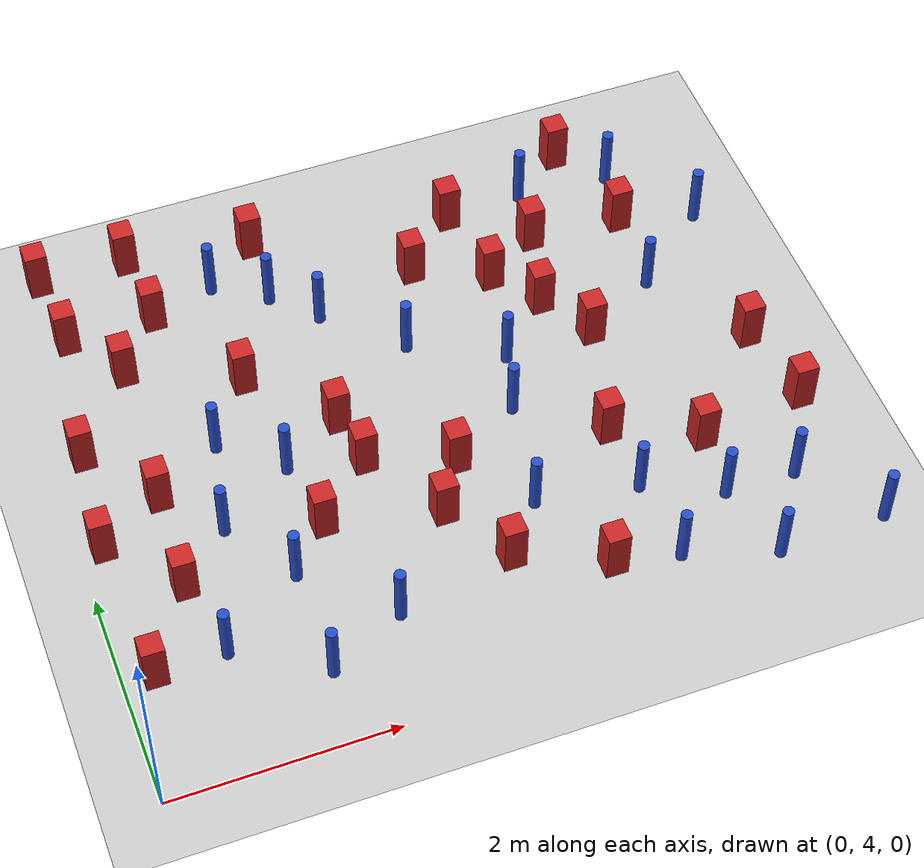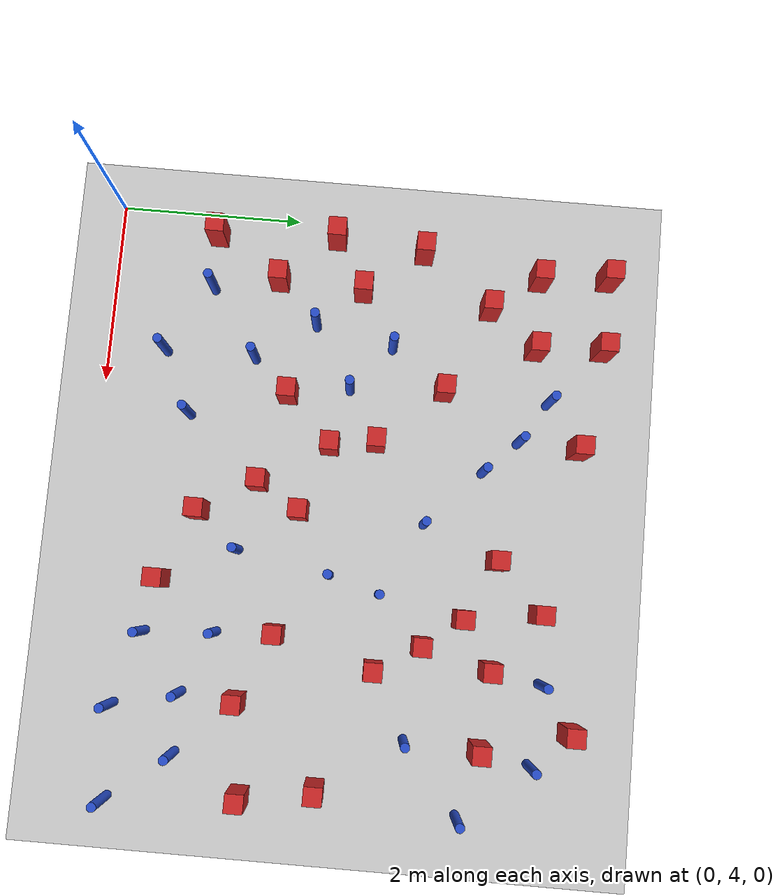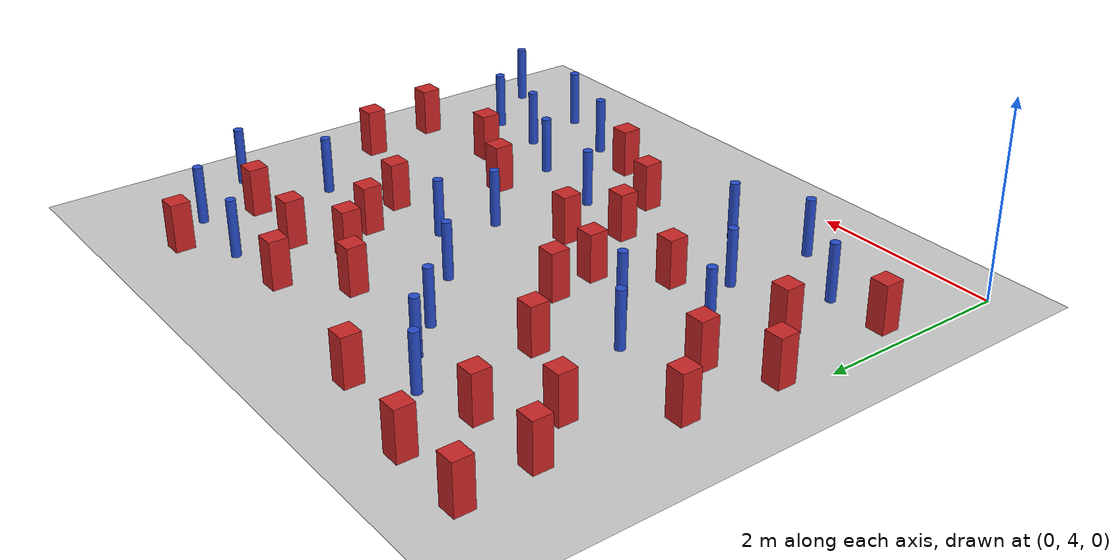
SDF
<sdf version="1.6">
 <world name="default">
  <model name="ground_plane">
   <static>1</static>
   <link name="link">
    <collision name="collision">
     <geometry><plane><normal>0 0 1</normal><size>100 100</size></plane></geometry>
     <surface><friction><ode><mu>100</mu><mu2>50</mu2></ode></friction></surface>
    </collision>
    <visual name="visual">
     <cast_shadows>0</cast_shadows>
     <geometry><plane><normal>0 0 1</normal><size>100 100</size></plane></geometry>
     <material>
      <ambient>1.0 1.0 1.0 1.0</ambient>
      <diffuse>0.8 0.8 0.8 1.0</diffuse>
      <specular>0.01 0.01 0.01 1.000000</specular>
     </material>
    </visual>
   </link>
  </model>
  <model name="pole_obstacle2">
   <static>true</static>
   <pose>1.63536920338 5.65598583855 -9.47619616065e-06 5.49618799737e-07 2.36310414061e-07 -1.550905348e-07</pose>
   <link name="link">
    <pose>0 0 0.3 0 -0 0</pose>
    <inertial>
     <mass>1</mass>
     <inertia><ixx>0.145833</ixx><ixy>0</ixy><ixz>0</ixz><iyy>0.145833</iyy><iyz>0</iyz><izz>0.125</izz></inertia>
    </inertial>
    <collision name="collision">
     <geometry><cylinder><radius>0.05</radius><length>.6</length></cylinder></geometry>
    </collision>
    <visual name="visual">
     <geometry><cylinder><radius>0.05</radius><length>.6</length></cylinder></geometry>
     <material>
      <script><name>Gazebo/Blue</name><uri>file://media/materials/scripts/gazebo.material</uri></script>
     </material>
    </visual>
   </link>
  </model>
  <model name="square_post_obstacle2">
   <static>true</static>
   <pose>1.28413385972 8.73851189312 -6.11067671241e-07 -5.50515727128e-06 -8.79689657224e-07 2.37013304536e-05</pose>
   <link name="link">
    <pose>0 0 0.25 0 -0 0</pose>
    <inertial>
     <mass>100</mass>
     <inertia>
      <ixx>0.166667</ixx>
      <ixy>0</ixy>
      <ixz>0</ixz>
      <iyy>0.166667</iyy>
      <iyz>0</iyz>
      <izz>0.166667</izz>
     </inertia>
    </inertial>
    <collision name="collision"><geometry><box><size>.2 .2 .5</size></box></geometry></collision>
    <visual name="visual">
     <geometry><box><size>.2 .2 .5</size></box></geometry>
     <material>
      <script><name>Gazebo/Red</name><uri>file://media/materials/scripts/gazebo.material</uri></script>
     </material>
    </visual>
   </link>
  </model>
  <model name="square_post_obstacle7">
   <static>true</static>
   <pose>3.37304363097 5.20476493427 -6.11067671241e-07 -5.50515727128e-06 -8.79689657224e-07 2.37013304536e-05</pose>
   <link name="link">
    <pose>0 0 0.25 0 -0 0</pose>
    <inertial>
     <mass>100</mass>
     <inertia>
      <ixx>0.166667</ixx>
      <ixy>0</ixy>
      <ixz>0</ixz>
      <iyy>0.166667</iyy>
      <iyz>0</iyz>
      <izz>0.166667</izz>
     </inertia>
    </inertial>
    <collision name="collision"><geometry><box><size>.2 .2 .5</size></box></geometry></collision>
    <visual name="visual">
     <geometry><box><size>.2 .2 .5</size></box></geometry>
     <material>
      <script><name>Gazebo/Red</name><uri>file://media/materials/scripts/gazebo.material</uri></script>
     </material>
    </visual>
   </link>
  </model>
  <model name="square_post_obstacle13">
   <static>true</static>
   <pose>4.82718077403 8.4764981061 -6.11067671241e-07 -5.50515727128e-06 -8.79689657224e-07 2.37013304536e-05</pose>
   <link name="link">
    <pose>0 0 0.25 0 -0 0</pose>
    <inertial>
     <mass>100</mass>
     <inertia>
      <ixx>0.166667</ixx>
      <ixy>0</ixy>
      <ixz>0</ixz>
      <iyy>0.166667</iyy>
      <iyz>0</iyz>
      <izz>0.166667</izz>
     </inertia>
    </inertial>
    <collision name="collision"><geometry><box><size>.2 .2 .5</size></box></geometry></collision>
    <visual name="visual">
     <geometry><box><size>.2 .2 .5</size></box></geometry>
     <material>
      <script><name>Gazebo/Red</name><uri>file://media/materials/scripts/gazebo.material</uri></script>
     </material>
    </visual>
   </link>
  </model>
  <model name="square_post_obstacle16">
   <static>true</static>
   <pose>4.92409012035 7.23680546538 -6.11067671241e-07 -5.50515727128e-06 -8.79689657224e-07 2.37013304536e-05</pose>
   <link name="link">
    <pose>0 0 0.25 0 -0 0</pose>
    <inertial>
     <mass>100</mass>
     <inertia>
      <ixx>0.166667</ixx>
      <ixy>0</ixy>
      <ixz>0</ixz>
      <iyy>0.166667</iyy>
      <iyz>0</iyz>
      <izz>0.166667</izz>
     </inertia>
    </inertial>
    <collision name="collision"><geometry><box><size>.2 .2 .5</size></box></geometry></collision>
    <visual name="visual">
     <geometry><box><size>.2 .2 .5</size></box></geometry>
     <material>
      <script><name>Gazebo/Red</name><uri>file://media/materials/scripts/gazebo.material</uri></script>
     </material>
    </visual>
   </link>
  </model>
  <model name="pole_obstacle22">
   <static>true</static>
   <pose>4.66761421427 5.51597058757 -9.47619616065e-06 5.49618799737e-07 2.36310414037e-07 -1.55090534814e-07</pose>
   <link name="link">
    <pose>0 0 0.3 0 -0 0</pose>
    <inertial>
     <mass>1</mass>
     <inertia><ixx>0.145833</ixx><ixy>0</ixy><ixz>0</ixz><iyy>0.145833</iyy><iyz>0</iyz><izz>0.125</izz></inertia>
    </inertial>
    <collision name="collision">
     <geometry><cylinder><radius>0.05</radius><length>.6</length></cylinder></geometry>
    </collision>
    <visual name="visual">
     <geometry><cylinder><radius>0.05</radius><length>.6</length></cylinder></geometry>
     <material>
      <script><name>Gazebo/Blue</name><uri>file://media/materials/scripts/gazebo.material</uri></script>
     </material>
    </visual>
   </link>
  </model>
  <model name="pole_obstacle25">
   <static>true</static>
   <pose>2.34287473306 8.62374181351 -9.4761961606e-06 5.49618799729e-07 2.36310414e-07 -1.55090534824e-07</pose>
   <link name="link">
    <pose>0 0 0.3 0 -0 0</pose>
    <inertial>
     <mass>1</mass>
     <inertia><ixx>0.145833</ixx><ixy>0</ixy><ixz>0</ixz><iyy>0.145833</iyy><iyz>0</iyz><izz>0.125</izz></inertia>
    </inertial>
    <collision name="collision">
     <geometry><cylinder><radius>0.05</radius><length>.6</length></cylinder></geometry>
    </collision>
    <visual name="visual">
     <geometry><cylinder><radius>0.05</radius><length>.6</length></cylinder></geometry>
     <material>
      <script><name>Gazebo/Blue</name><uri>file://media/materials/scripts/gazebo.material</uri></script>
     </material>
    </visual>
   </link>
  </model>
  <model name="square_post_obstacle22">
   <static>true</static>
   <pose>3.65647134105 8.4749441966 -6.11067671241e-07 -5.50515727128e-06 -8.79689657224e-07 2.37013304536e-05</pose>
   <link name="link">
    <pose>0 0 0.25 0 -0 0</pose>
    <inertial>
     <mass>100</mass>
     <inertia>
      <ixx>0.166667</ixx>
      <ixy>0</ixy>
      <ixz>0</ixz>
      <iyy>0.166667</iyy>
      <iyz>0</iyz>
      <izz>0.166667</izz>
     </inertia>
    </inertial>
    <collision name="collision"><geometry><box><size>.2 .2 .5</size></box></geometry></collision>
    <visual name="visual">
     <geometry><box><size>.2 .2 .5</size></box></geometry>
     <material>
      <script><name>Gazebo/Red</name><uri>file://media/materials/scripts/gazebo.material</uri></script>
     </material>
    </visual>
   </link>
  </model>
  <model name="pole_obstacle31">
   <static>true</static>
   <pose>2.70337888853 8.25574455518 -9.4761961606e-06 5.49618799729e-07 2.36310414e-07 -1.55090534824e-07</pose>
   <link name="link">
    <pose>0 0 0.3 0 -0 0</pose>
    <inertial>
     <mass>1</mass>
     <inertia><ixx>0.145833</ixx><ixy>0</ixy><ixz>0</ixz><iyy>0.145833</iyy><iyz>0</iyz><izz>0.125</izz></inertia>
    </inertial>
    <collision name="collision">
     <geometry><cylinder><radius>0.05</radius><length>.6</length></cylinder></geometry>
    </collision>
    <visual name="visual">
     <geometry><cylinder><radius>0.05</radius><length>.6</length></cylinder></geometry>
     <material>
      <script><name>Gazebo/Blue</name><uri>file://media/materials/scripts/gazebo.material</uri></script>
     </material>
    </visual>
   </link>
  </model>
  <model name="square_post_obstacle27">
   <static>true</static>
   <pose>0.731215519983 5.85237834942 -6.11067671241e-07 -5.50515727128e-06 -8.79689657224e-07 2.37013304536e-05</pose>
   <link name="link">
    <pose>0 0 0.25 0 -0 0</pose>
    <inertial>
     <mass>100</mass>
     <inertia>
      <ixx>0.166667</ixx>
      <ixy>0</ixy>
      <ixz>0</ixz>
      <iyy>0.166667</iyy>
      <iyz>0</iyz>
      <izz>0.166667</izz>
     </inertia>
    </inertial>
    <collision name="collision"><geometry><box><size>.2 .2 .5</size></box></geometry></collision>
    <visual name="visual">
     <geometry><box><size>.2 .2 .5</size></box></geometry>
     <material>
      <script><name>Gazebo/Red</name><uri>file://media/materials/scripts/gazebo.material</uri></script>
     </material>
    </visual>
   </link>
  </model>
  <model name="pole_obstacle39">
   <static>true</static>
   <pose>3.95678954155 6.68247510671 -9.47619616065e-06 5.49618799737e-07 2.36310414049e-07 -1.55090534808e-07</pose>
   <link name="link">
    <pose>0 0 0.3 0 -0 0</pose>
    <inertial>
     <mass>1</mass>
     <inertia><ixx>0.145833</ixx><ixy>0</ixy><ixz>0</ixz><iyy>0.145833</iyy><iyz>0</iyz><izz>0.125</izz></inertia>
    </inertial>
    <collision name="collision">
     <geometry><cylinder><radius>0.05</radius><length>.6</length></cylinder></geometry>
    </collision>
    <visual name="visual">
     <geometry><cylinder><radius>0.05</radius><length>.6</length></cylinder></geometry>
     <material>
      <script><name>Gazebo/Blue</name><uri>file://media/materials/scripts/gazebo.material</uri></script>
     </material>
    </visual>
   </link>
  </model>
  <model name="square_post_obstacle33">
   <static>true</static>
   <pose>0.196611121142 6.45128601565 -6.11067671241e-07 -5.50515727128e-06 -8.79689657224e-07 2.37013304536e-05</pose>
   <link name="link">
    <pose>0 0 0.25 0 -0 0</pose>
    <inertial>
     <mass>100</mass>
     <inertia>
      <ixx>0.166667</ixx>
      <ixy>0</ixy>
      <ixz>0</ixz>
      <iyy>0.166667</iyy>
      <iyz>0</iyz>
      <izz>0.166667</izz>
     </inertia>
    </inertial>
    <collision name="collision"><geometry><box><size>.2 .2 .5</size></box></geometry></collision>
    <visual name="visual">
     <geometry><box><size>.2 .2 .5</size></box></geometry>
     <material>
      <script><name>Gazebo/Red</name><uri>file://media/materials/scripts/gazebo.material</uri></script>
     </material>
    </visual>
   </link>
  </model>
  <model name="pole_obstacle46">
   <static>true</static>
   <pose>1.88121961669 8.91884563724 -9.47619616065e-06 5.49618799737e-07 2.36310414046e-07 -1.55090534809e-07</pose>
   <link name="link">
    <pose>0 0 0.3 0 -0 0</pose>
    <inertial>
     <mass>1</mass>
     <inertia><ixx>0.145833</ixx><ixy>0</ixy><ixz>0</ixz><iyy>0.145833</iyy><iyz>0</iyz><izz>0.125</izz></inertia>
    </inertial>
    <collision name="collision">
     <geometry><cylinder><radius>0.05</radius><length>.6</length></cylinder></geometry>
    </collision>
    <visual name="visual">
     <geometry><cylinder><radius>0.05</radius><length>.6</length></cylinder></geometry>
     <material>
      <script><name>Gazebo/Blue</name><uri>file://media/materials/scripts/gazebo.material</uri></script>
     </material>
    </visual>
   </link>
  </model>
  <model name="square_post_obstacle38">
   <static>true</static>
   <pose>4.30647447967 8.15275104865 -6.11067671241e-07 -5.50515727128e-06 -8.79689657224e-07 2.37013304536e-05</pose>
   <link name="link">
    <pose>0 0 0.25 0 -0 0</pose>
    <inertial>
     <mass>100</mass>
     <inertia>
      <ixx>0.166667</ixx>
      <ixy>0</ixy>
      <ixz>0</ixz>
      <iyy>0.166667</iyy>
      <iyz>0</iyz>
      <izz>0.166667</izz>
     </inertia>
    </inertial>
    <collision name="collision"><geometry><box><size>.2 .2 .5</size></box></geometry></collision>
    <visual name="visual">
     <geometry><box><size>.2 .2 .5</size></box></geometry>
     <material>
      <script><name>Gazebo/Red</name><uri>file://media/materials/scripts/gazebo.material</uri></script>
     </material>
    </visual>
   </link>
  </model>
  <model name="pole_obstacle54">
   <static>true</static>
   <pose>4.92861528887 9.03308028596 -9.47619616065e-06 5.49618799737e-07 2.36310414065e-07 -1.55090534796e-07</pose>
   <link name="link">
    <pose>0 0 0.3 0 -0 0</pose>
    <inertial>
     <mass>1</mass>
     <inertia><ixx>0.145833</ixx><ixy>0</ixy><ixz>0</ixz><iyy>0.145833</iyy><iyz>0</iyz><izz>0.125</izz></inertia>
    </inertial>
    <collision name="collision">
     <geometry><cylinder><radius>0.05</radius><length>.6</length></cylinder></geometry>
    </collision>
    <visual name="visual">
     <geometry><cylinder><radius>0.05</radius><length>.6</length></cylinder></geometry>
     <material>
      <script><name>Gazebo/Blue</name><uri>file://media/materials/scripts/gazebo.material</uri></script>
     </material>
    </visual>
   </link>
  </model>
  <model name="square_post_obstacle41">
   <static>true</static>
   <pose>6.22185440824 6.727240669 -6.11067671241e-07 -5.50515727128e-06 -8.79689657224e-07 2.37013304536e-05</pose>
   <link name="link">
    <pose>0 0 0.25 0 -0 0</pose>
    <inertial>
     <mass>100</mass>
     <inertia>
      <ixx>0.166667</ixx>
      <ixy>0</ixy>
      <ixz>0</ixz>
      <iyy>0.166667</iyy>
      <iyz>0</iyz>
      <izz>0.166667</izz>
     </inertia>
    </inertial>
    <collision name="collision"><geometry><box><size>.2 .2 .5</size></box></geometry></collision>
    <visual name="visual">
     <geometry><box><size>.2 .2 .5</size></box></geometry>
     <material>
      <script><name>Gazebo/Red</name><uri>file://media/materials/scripts/gazebo.material</uri></script>
     </material>
    </visual>
   </link>
  </model>
  <model name="pole_obstacle66">
   <static>true</static>
   <pose>2.3190342198 4.99551203926 -9.47619616065e-06 5.49618799738e-07 2.3631041406e-07 -1.55090534801e-07</pose>
   <link name="link">
    <pose>0 0 0.3 0 -0 0</pose>
    <inertial>
     <mass>1</mass>
     <inertia><ixx>0.145833</ixx><ixy>0</ixy><ixz>0</ixz><iyy>0.145833</iyy><iyz>0</iyz><izz>0.125</izz></inertia>
    </inertial>
    <collision name="collision">
     <geometry><cylinder><radius>0.05</radius><length>.6</length></cylinder></geometry>
    </collision>
    <visual name="visual">
     <geometry><cylinder><radius>0.05</radius><length>.6</length></cylinder></geometry>
     <material>
      <script><name>Gazebo/Blue</name><uri>file://media/materials/scripts/gazebo.material</uri></script>
     </material>
    </visual>
   </link>
  </model>
  <model name="square_post_obstacle58">
   <static>true</static>
   <pose>5.37695153004 5.80423956016 -6.11067671241e-07 -5.50515727128e-06 -8.79689657224e-07 2.37013304536e-05</pose>
   <link name="link">
    <pose>0 0 0.25 0 -0 0</pose>
    <inertial>
     <mass>100</mass>
     <inertia>
      <ixx>0.166667</ixx>
      <ixy>0</ixy>
      <ixz>0</ixz>
      <iyy>0.166667</iyy>
      <iyz>0</iyz>
      <izz>0.166667</izz>
     </inertia>
    </inertial>
    <collision name="collision"><geometry><box><size>.2 .2 .5</size></box></geometry></collision>
    <visual name="visual">
     <geometry><box><size>.2 .2 .5</size></box></geometry>
     <material>
      <script><name>Gazebo/Red</name><uri>file://media/materials/scripts/gazebo.material</uri></script>
     </material>
    </visual>
   </link>
  </model>
  <model name="square_post_obstacle66">
   <static>true</static>
   <pose>4.63061531346 6.15508883849 -6.11067671241e-07 -5.50515727128e-06 -8.79689657224e-07 2.37013304536e-05</pose>
   <link name="link">
    <pose>0 0 0.25 0 -0 0</pose>
    <inertial>
     <mass>100</mass>
     <inertia>
      <ixx>0.166667</ixx>
      <ixy>0</ixy>
      <ixz>0</ixz>
      <iyy>0.166667</iyy>
      <iyz>0</iyz>
      <izz>0.166667</izz>
     </inertia>
    </inertial>
    <collision name="collision"><geometry><box><size>.2 .2 .5</size></box></geometry></collision>
    <visual name="visual">
     <geometry><box><size>.2 .2 .5</size></box></geometry>
     <material>
      <script><name>Gazebo/Red</name><uri>file://media/materials/scripts/gazebo.material</uri></script>
     </material>
    </visual>
   </link>
  </model>
  <model name="square_post_obstacle70">
   <static>true</static>
   <pose>0.868172630408 8.20535573726 -6.11067671241e-07 -5.50515727128e-06 -8.79689657224e-07 2.37013304536e-05</pose>
   <link name="link">
    <pose>0 0 0.25 0 -0 0</pose>
    <inertial>
     <mass>100</mass>
     <inertia>
      <ixx>0.166667</ixx>
      <ixy>0</ixy>
      <ixz>0</ixz>
      <iyy>0.166667</iyy>
      <iyz>0</iyz>
      <izz>0.166667</izz>
     </inertia>
    </inertial>
    <collision name="collision"><geometry><box><size>.2 .2 .5</size></box></geometry></collision>
    <visual name="visual">
     <geometry><box><size>.2 .2 .5</size></box></geometry>
     <material>
      <script><name>Gazebo/Red</name><uri>file://media/materials/scripts/gazebo.material</uri></script>
     </material>
    </visual>
   </link>
  </model>
  <model name="pole_obstacle84">
   <static>true</static>
   <pose>5.97145726048 5.19424363797 -9.47619616065e-06 5.49618799737e-07 2.36310414037e-07 -1.55090534814e-07</pose>
   <link name="link">
    <pose>0 0 0.3 0 -0 0</pose>
    <inertial>
     <mass>1</mass>
     <inertia><ixx>0.145833</ixx><ixy>0</ixy><ixz>0</ixz><iyy>0.145833</iyy><iyz>0</iyz><izz>0.125</izz></inertia>
    </inertial>
    <collision name="collision">
     <geometry><cylinder><radius>0.05</radius><length>.6</length></cylinder></geometry>
    </collision>
    <visual name="visual">
     <geometry><cylinder><radius>0.05</radius><length>.6</length></cylinder></geometry>
     <material>
      <script><name>Gazebo/Blue</name><uri>file://media/materials/scripts/gazebo.material</uri></script>
     </material>
    </visual>
   </link>
  </model>
  <model name="pole_obstacle96">
   <static>true</static>
   <pose>0.877706538074 5.12454226587 -9.47619616065e-06 5.49618799737e-07 2.36310414065e-07 -1.55090534796e-07</pose>
   <link name="link">
    <pose>0 0 0.3 0 -0 0</pose>
    <inertial>
     <mass>1</mass>
     <inertia><ixx>0.145833</ixx><ixy>0</ixy><ixz>0</ixz><iyy>0.145833</iyy><iyz>0</iyz><izz>0.125</izz></inertia>
    </inertial>
    <collision name="collision">
     <geometry><cylinder><radius>0.05</radius><length>.6</length></cylinder></geometry>
    </collision>
    <visual name="visual">
     <geometry><cylinder><radius>0.05</radius><length>.6</length></cylinder></geometry>
     <material>
      <script><name>Gazebo/Blue</name><uri>file://media/materials/scripts/gazebo.material</uri></script>
     </material>
    </visual>
   </link>
  </model>
  <model name="square_post_obstacle90">
   <static>true</static>
   <pose>0.283986299397 7.4303097382 -6.11067671241e-07 -5.50515727128e-06 -8.79689657224e-07 2.37013304536e-05</pose>
   <link name="link">
    <pose>0 0 0.25 0 -0 0</pose>
    <inertial>
     <mass>100</mass>
     <inertia>
      <ixx>0.166667</ixx>
      <ixy>0</ixy>
      <ixz>0</ixz>
      <iyy>0.166667</iyy>
      <iyz>0</iyz>
      <izz>0.166667</izz>
     </inertia>
    </inertial>
    <collision name="collision"><geometry><box><size>.2 .2 .5</size></box></geometry></collision>
    <visual name="visual">
     <geometry><box><size>.2 .2 .5</size></box></geometry>
     <material>
      <script><name>Gazebo/Red</name><uri>file://media/materials/scripts/gazebo.material</uri></script>
     </material>
    </visual>
   </link>
  </model>
  <model name="pole_obstacle101">
   <static>true</static>
   <pose>5.78421390818 8.96886984167 -9.47619616065e-06 5.49618799737e-07 2.36310414065e-07 -1.55090534796e-07</pose>
   <link name="link">
    <pose>0 0 0.3 0 -0 0</pose>
    <inertial>
     <mass>1</mass>
     <inertia><ixx>0.145833</ixx><ixy>0</ixy><ixz>0</ixz><iyy>0.145833</iyy><iyz>0</iyz><izz>0.125</izz></inertia>
    </inertial>
    <collision name="collision">
     <geometry><cylinder><radius>0.05</radius><length>.6</length></cylinder></geometry>
    </collision>
    <visual name="visual">
     <geometry><cylinder><radius>0.05</radius><length>.6</length></cylinder></geometry>
     <material>
      <script><name>Gazebo/Blue</name><uri>file://media/materials/scripts/gazebo.material</uri></script>
     </material>
    </visual>
   </link>
  </model>
  <model name="square_post_obstacle94">
   <static>true</static>
   <pose>4.62807452635 7.73009111892 -6.11067671241e-07 -5.50515727128e-06 -8.79689657224e-07 2.37013304536e-05</pose>
   <link name="link">
    <pose>0 0 0.25 0 -0 0</pose>
    <inertial>
     <mass>100</mass>
     <inertia>
      <ixx>0.166667</ixx>
      <ixy>0</ixy>
      <ixz>0</ixz>
      <iyy>0.166667</iyy>
      <iyz>0</iyz>
      <izz>0.166667</izz>
     </inertia>
    </inertial>
    <collision name="collision"><geometry><box><size>.2 .2 .5</size></box></geometry></collision>
    <visual name="visual">
     <geometry><box><size>.2 .2 .5</size></box></geometry>
     <material>
      <script><name>Gazebo/Red</name><uri>file://media/materials/scripts/gazebo.material</uri></script>
     </material>
    </visual>
   </link>
  </model>
  <model name="pole_obstacle102">
   <static>true</static>
   <pose>6.37610853218 8.2362548816 -9.47619616065e-06 5.49618799737e-07 2.36310414065e-07 -1.55090534796e-07</pose>
   <link name="link">
    <pose>0 0 0.3 0 -0 0</pose>
    <inertial>
     <mass>1</mass>
     <inertia><ixx>0.145833</ixx><ixy>0</ixy><ixz>0</ixz><iyy>0.145833</iyy><iyz>0</iyz><izz>0.125</izz></inertia>
    </inertial>
    <collision name="collision">
     <geometry><cylinder><radius>0.05</radius><length>.6</length></cylinder></geometry>
    </collision>
    <visual name="visual">
     <geometry><cylinder><radius>0.05</radius><length>.6</length></cylinder></geometry>
     <material>
      <script><name>Gazebo/Blue</name><uri>file://media/materials/scripts/gazebo.material</uri></script>
     </material>
    </visual>
   </link>
  </model>
  <model name="pole_obstacle105">
   <static>true</static>
   <pose>3.32145191006 7.66105411932 -9.47619616065e-06 5.49618799738e-07 2.3631041406e-07 -1.55090534801e-07</pose>
   <link name="link">
    <pose>0 0 0.3 0 -0 0</pose>
    <inertial>
     <mass>1</mass>
     <inertia><ixx>0.145833</ixx><ixy>0</ixy><ixz>0</ixz><iyy>0.145833</iyy><iyz>0</iyz><izz>0.125</izz></inertia>
    </inertial>
    <collision name="collision">
     <geometry><cylinder><radius>0.05</radius><length>.6</length></cylinder></geometry>
    </collision>
    <visual name="visual">
     <geometry><cylinder><radius>0.05</radius><length>.6</length></cylinder></geometry>
     <material>
      <script><name>Gazebo/Blue</name><uri>file://media/materials/scripts/gazebo.material</uri></script>
     </material>
    </visual>
   </link>
  </model>
  <model name="pole_obstacle108">
   <static>true</static>
   <pose>5.33325796079 5.20365511637 -9.47619616065e-06 5.49618799737e-07 2.36310414037e-07 -1.55090534814e-07</pose>
   <link name="link">
    <pose>0 0 0.3 0 -0 0</pose>
    <inertial>
     <mass>1</mass>
     <inertia><ixx>0.145833</ixx><ixy>0</ixy><ixz>0</ixz><iyy>0.145833</iyy><iyz>0</iyz><izz>0.125</izz></inertia>
    </inertial>
    <collision name="collision">
     <geometry><cylinder><radius>0.05</radius><length>.6</length></cylinder></geometry>
    </collision>
    <visual name="visual">
     <geometry><cylinder><radius>0.05</radius><length>.6</length></cylinder></geometry>
     <material>
      <script><name>Gazebo/Blue</name><uri>file://media/materials/scripts/gazebo.material</uri></script>
     </material>
    </visual>
   </link>
  </model>
  <model name="pole_obstacle109">
   <static>true</static>
   <pose>3.76495927698 5.6675437572 -9.47619616065e-06 5.49618799738e-07 2.3631041406e-07 -1.55090534801e-07</pose>
   <link name="link">
    <pose>0 0 0.3 0 -0 0</pose>
    <inertial>
     <mass>1</mass>
     <inertia><ixx>0.145833</ixx><ixy>0</ixy><ixz>0</ixz><iyy>0.145833</iyy><iyz>0</iyz><izz>0.125</izz></inertia>
    </inertial>
    <collision name="collision">
     <geometry><cylinder><radius>0.05</radius><length>.6</length></cylinder></geometry>
    </collision>
    <visual name="visual">
     <geometry><cylinder><radius>0.05</radius><length>.6</length></cylinder></geometry>
     <material>
      <script><name>Gazebo/Blue</name><uri>file://media/materials/scripts/gazebo.material</uri></script>
     </material>
    </visual>
   </link>
  </model>
  <model name="pole_obstacle111">
   <static>true</static>
   <pose>4.11840676456 7.23807263718 -9.47619616065e-06 5.49618799737e-07 2.36310414037e-07 -1.55090534814e-07</pose>
   <link name="link">
    <pose>0 0 0.3 0 -0 0</pose>
    <inertial>
     <mass>1</mass>
     <inertia><ixx>0.145833</ixx><ixy>0</ixy><ixz>0</ixz><iyy>0.145833</iyy><iyz>0</iyz><izz>0.125</izz></inertia>
    </inertial>
    <collision name="collision">
     <geometry><cylinder><radius>0.05</radius><length>.6</length></cylinder></geometry>
    </collision>
    <visual name="visual">
     <geometry><cylinder><radius>0.05</radius><length>.6</length></cylinder></geometry>
     <material>
      <script><name>Gazebo/Blue</name><uri>file://media/materials/scripts/gazebo.material</uri></script>
     </material>
    </visual>
   </link>
  </model>
  <model name="square_post_obstacle117">
   <static>true</static>
   <pose>2.46547337227 7.06898881672 -6.11067671241e-07 -5.50515727128e-06 -8.79689657224e-07 2.37013304536e-05</pose>
   <link name="link">
    <pose>0 0 0.25 0 -0 0</pose>
    <inertial>
     <mass>100</mass>
     <inertia>
      <ixx>0.166667</ixx>
      <ixy>0</ixy>
      <ixz>0</ixz>
      <iyy>0.166667</iyy>
      <iyz>0</iyz>
      <izz>0.166667</izz>
     </inertia>
    </inertial>
    <collision name="collision"><geometry><box><size>.2 .2 .5</size></box></geometry></collision>
    <visual name="visual">
     <geometry><box><size>.2 .2 .5</size></box></geometry>
     <material>
      <script><name>Gazebo/Red</name><uri>file://media/materials/scripts/gazebo.material</uri></script>
     </material>
    </visual>
   </link>
  </model>
  <model name="pole_obstacle126">
   <static>true</static>
   <pose>5.51040721238 4.48508234404 -9.47619616065e-06 5.49618799737e-07 2.36310414037e-07 -1.55090534814e-07</pose>
   <link name="link">
    <pose>0 0 0.3 0 -0 0</pose>
    <inertial>
     <mass>1</mass>
     <inertia><ixx>0.145833</ixx><ixy>0</ixy><ixz>0</ixz><iyy>0.145833</iyy><iyz>0</iyz><izz>0.125</izz></inertia>
    </inertial>
    <collision name="collision">
     <geometry><cylinder><radius>0.05</radius><length>.6</length></cylinder></geometry>
    </collision>
    <visual name="visual">
     <geometry><cylinder><radius>0.05</radius><length>.6</length></cylinder></geometry>
     <material>
      <script><name>Gazebo/Blue</name><uri>file://media/materials/scripts/gazebo.material</uri></script>
     </material>
    </visual>
   </link>
  </model>
  <model name="square_post_obstacle124">
   <static>true</static>
   <pose>3.29038243452 6.29758767439 -6.11067671241e-07 -5.50515727128e-06 -8.79689657224e-07 2.37013304536e-05</pose>
   <link name="link">
    <pose>0 0 0.25 0 -0 0</pose>
    <inertial>
     <mass>100</mass>
     <inertia>
      <ixx>0.166667</ixx>
      <ixy>0</ixy>
      <ixz>0</ixz>
      <iyy>0.166667</iyy>
      <iyz>0</iyz>
      <izz>0.166667</izz>
     </inertia>
    </inertial>
    <collision name="collision"><geometry><box><size>.2 .2 .5</size></box></geometry></collision>
    <visual name="visual">
     <geometry><box><size>.2 .2 .5</size></box></geometry>
     <material>
      <script><name>Gazebo/Red</name><uri>file://media/materials/scripts/gazebo.material</uri></script>
     </material>
    </visual>
   </link>
  </model>
  <model name="square_post_obstacle128">
   <static>true</static>
   <pose>0.485927942078 8.73358957915 -6.11067671241e-07 -5.50515727128e-06 -8.79689657224e-07 2.37013304536e-05</pose>
   <link name="link">
    <pose>0 0 0.25 0 -0 0</pose>
    <inertial>
     <mass>100</mass>
     <inertia>
      <ixx>0.166667</ixx>
      <ixy>0</ixy>
      <ixz>0</ixz>
      <iyy>0.166667</iyy>
      <iyz>0</iyz>
      <izz>0.166667</izz>
     </inertia>
    </inertial>
    <collision name="collision"><geometry><box><size>.2 .2 .5</size></box></geometry></collision>
    <visual name="visual">
     <geometry><box><size>.2 .2 .5</size></box></geometry>
     <material>
      <script><name>Gazebo/Red</name><uri>file://media/materials/scripts/gazebo.material</uri></script>
     </material>
    </visual>
   </link>
  </model>
  <model name="pole_obstacle138">
   <static>true</static>
   <pose>4.71836872541 4.74156205045 -9.47619616065e-06 5.49618799737e-07 2.36310414037e-07 -1.55090534814e-07</pose>
   <link name="link">
    <pose>0 0 0.3 0 -0 0</pose>
    <inertial>
     <mass>1</mass>
     <inertia><ixx>0.145833</ixx><ixy>0</ixy><ixz>0</ixz><iyy>0.145833</iyy><iyz>0</iyz><izz>0.125</izz></inertia>
    </inertial>
    <collision name="collision">
     <geometry><cylinder><radius>0.05</radius><length>.6</length></cylinder></geometry>
    </collision>
    <visual name="visual">
     <geometry><cylinder><radius>0.05</radius><length>.6</length></cylinder></geometry>
     <material>
      <script><name>Gazebo/Blue</name><uri>file://media/materials/scripts/gazebo.material</uri></script>
     </material>
    </visual>
   </link>
  </model>
  <model name="square_post_obstacle134">
   <static>true</static>
   <pose>3.0039446824 5.82797028053 -6.11067671241e-07 -5.50515727128e-06 -8.79689657224e-07 2.37013304536e-05</pose>
   <link name="link">
    <pose>0 0 0.25 0 -0 0</pose>
    <inertial>
     <mass>100</mass>
     <inertia>
      <ixx>0.166667</ixx>
      <ixy>0</ixy>
      <ixz>0</ixz>
      <iyy>0.166667</iyy>
      <iyz>0</iyz>
      <izz>0.166667</izz>
     </inertia>
    </inertial>
    <collision name="collision"><geometry><box><size>.2 .2 .5</size></box></geometry></collision>
    <visual name="visual">
     <geometry><box><size>.2 .2 .5</size></box></geometry>
     <material>
      <script><name>Gazebo/Red</name><uri>file://media/materials/scripts/gazebo.material</uri></script>
     </material>
    </visual>
   </link>
  </model>
  <model name="square_post_obstacle136">
   <static>true</static>
   <pose>0.264485195772 5.11915389369 -6.11067671241e-07 -5.50515727128e-06 -8.79689657224e-07 2.37013304536e-05</pose>
   <link name="link">
    <pose>0 0 0.25 0 -0 0</pose>
    <inertial>
     <mass>100</mass>
     <inertia>
      <ixx>0.166667</ixx>
      <ixy>0</ixy>
      <ixz>0</ixz>
      <iyy>0.166667</iyy>
      <iyz>0</iyz>
      <izz>0.166667</izz>
     </inertia>
    </inertial>
    <collision name="collision"><geometry><box><size>.2 .2 .5</size></box></geometry></collision>
    <visual name="visual">
     <geometry><box><size>.2 .2 .5</size></box></geometry>
     <material>
      <script><name>Gazebo/Red</name><uri>file://media/materials/scripts/gazebo.material</uri></script>
     </material>
    </visual>
   </link>
  </model>
  <model name="square_post_obstacle137">
   <static>true</static>
   <pose>6.35995913078 5.93331171484 -6.11067671241e-07 -5.50515727128e-06 -8.79689657224e-07 2.37013304536e-05</pose>
   <link name="link">
    <pose>0 0 0.25 0 -0 0</pose>
    <inertial>
     <mass>100</mass>
     <inertia>
      <ixx>0.166667</ixx>
      <ixy>0</ixy>
      <ixz>0</ixz>
      <iyy>0.166667</iyy>
      <iyz>0</iyz>
      <izz>0.166667</izz>
     </inertia>
    </inertial>
    <collision name="collision"><geometry><box><size>.2 .2 .5</size></box></geometry></collision>
    <visual name="visual">
     <geometry><box><size>.2 .2 .5</size></box></geometry>
     <material>
      <script><name>Gazebo/Red</name><uri>file://media/materials/scripts/gazebo.material</uri></script>
     </material>
    </visual>
   </link>
  </model>
  <model name="square_post_obstacle141">
   <static>true</static>
   <pose>2.36247738173 9.28059816112 -6.11067671241e-07 -5.50515727128e-06 -8.79689657224e-07 2.37013304536e-05</pose>
   <link name="link">
    <pose>0 0 0.25 0 -0 0</pose>
    <inertial>
     <mass>100</mass>
     <inertia>
      <ixx>0.166667</ixx>
      <ixy>0</ixy>
      <ixz>0</ixz>
      <iyy>0.166667</iyy>
      <iyz>0</iyz>
      <izz>0.166667</izz>
     </inertia>
    </inertial>
    <collision name="collision"><geometry><box><size>.2 .2 .5</size></box></geometry></collision>
    <visual name="visual">
     <geometry><box><size>.2 .2 .5</size></box></geometry>
     <material>
      <script><name>Gazebo/Red</name><uri>file://media/materials/scripts/gazebo.material</uri></script>
     </material>
    </visual>
   </link>
  </model>
  <model name="square_post_obstacle144">
   <static>true</static>
   <pose>1.83082719965 7.76601675365 -6.11067671241e-07 -5.50515727128e-06 -8.79689657224e-07 2.37013304536e-05</pose>
   <link name="link">
    <pose>0 0 0.25 0 -0 0</pose>
    <inertial>
     <mass>100</mass>
     <inertia>
      <ixx>0.166667</ixx>
      <ixy>0</ixy>
      <ixz>0</ixz>
      <iyy>0.166667</iyy>
      <iyz>0</iyz>
      <izz>0.166667</izz>
     </inertia>
    </inertial>
    <collision name="collision"><geometry><box><size>.2 .2 .5</size></box></geometry></collision>
    <visual name="visual">
     <geometry><box><size>.2 .2 .5</size></box></geometry>
     <material>
      <script><name>Gazebo/Red</name><uri>file://media/materials/scripts/gazebo.material</uri></script>
     </material>
    </visual>
   </link>
  </model>
  <model name="square_post_obstacle145">
   <static>true</static>
   <pose>0.777850476428 6.79015651088 -6.11067671241e-07 -5.50515727128e-06 -8.79689657224e-07 2.37013304536e-05</pose>
   <link name="link">
    <pose>0 0 0.25 0 -0 0</pose>
    <inertial>
     <mass>100</mass>
     <inertia>
      <ixx>0.166667</ixx>
      <ixy>0</ixy>
      <ixz>0</ixz>
      <iyy>0.166667</iyy>
      <iyz>0</iyz>
      <izz>0.166667</izz>
     </inertia>
    </inertial>
    <collision name="collision"><geometry><box><size>.2 .2 .5</size></box></geometry></collision>
    <visual name="visual">
     <geometry><box><size>.2 .2 .5</size></box></geometry>
     <material>
      <script><name>Gazebo/Red</name><uri>file://media/materials/scripts/gazebo.material</uri></script>
     </material>
    </visual>
   </link>
  </model>
  <model name="square_post_obstacle147">
   <static>true</static>
   <pose>0.42192004004 9.48927523178 -6.11067671241e-07 -5.50515727128e-06 -8.79689657224e-07 2.37013304536e-05</pose>
   <link name="link">
    <pose>0 0 0.25 0 -0 0</pose>
    <inertial>
     <mass>100</mass>
     <inertia>
      <ixx>0.166667</ixx>
      <ixy>0</ixy>
      <ixz>0</ixz>
      <iyy>0.166667</iyy>
      <iyz>0</iyz>
      <izz>0.166667</izz>
     </inertia>
    </inertial>
    <collision name="collision"><geometry><box><size>.2 .2 .5</size></box></geometry></collision>
    <visual name="visual">
     <geometry><box><size>.2 .2 .5</size></box></geometry>
     <material>
      <script><name>Gazebo/Red</name><uri>file://media/materials/scripts/gazebo.material</uri></script>
     </material>
    </visual>
   </link>
  </model>
  <model name="square_post_obstacle150">
   <static>true</static>
   <pose>2.00761077162 6.06046364233 -6.11067671241e-07 -5.50515727128e-06 -8.79689657224e-07 2.37013304536e-05</pose>
   <link name="link">
    <pose>0 0 0.25 0 -0 0</pose>
    <inertial>
     <mass>100</mass>
     <inertia>
      <ixx>0.166667</ixx>
      <ixy>0</ixy>
      <ixz>0</ixz>
      <iyy>0.166667</iyy>
      <iyz>0</iyz>
      <izz>0.166667</izz>
     </inertia>
    </inertial>
    <collision name="collision"><geometry><box><size>.2 .2 .5</size></box></geometry></collision>
    <visual name="visual">
     <geometry><box><size>.2 .2 .5</size></box></geometry>
     <material>
      <script><name>Gazebo/Red</name><uri>file://media/materials/scripts/gazebo.material</uri></script>
     </material>
    </visual>
   </link>
  </model>
  <model name="pole_obstacle154">
   <static>true</static>
   <pose>6.4899580558 4.52253559898 -9.47619616065e-06 5.49618799737e-07 2.36310414037e-07 -1.55090534814e-07</pose>
   <link name="link">
    <pose>0 0 0.3 0 -0 0</pose>
    <inertial>
     <mass>1</mass>
     <inertia><ixx>0.145833</ixx><ixy>0</ixy><ixz>0</ixz><iyy>0.145833</iyy><iyz>0</iyz><izz>0.125</izz></inertia>
    </inertial>
    <collision name="collision">
     <geometry><cylinder><radius>0.05</radius><length>.6</length></cylinder></geometry>
    </collision>
    <visual name="visual">
     <geometry><cylinder><radius>0.05</radius><length>.6</length></cylinder></geometry>
     <material>
      <script><name>Gazebo/Blue</name><uri>file://media/materials/scripts/gazebo.material</uri></script>
     </material>
    </visual>
   </link>
  </model>
  <model name="pole_obstacle157">
   <static>true</static>
   <pose>5.63682245361 7.62285865959 -9.47619616065e-06 5.49618799737e-07 2.36310414037e-07 -1.55090534814e-07</pose>
   <link name="link">
    <pose>0 0 0.3 0 -0 0</pose>
    <inertial>
     <mass>1</mass>
     <inertia><ixx>0.145833</ixx><ixy>0</ixy><ixz>0</ixz><iyy>0.145833</iyy><iyz>0</iyz><izz>0.125</izz></inertia>
    </inertial>
    <collision name="collision">
     <geometry><cylinder><radius>0.05</radius><length>.6</length></cylinder></geometry>
    </collision>
    <visual name="visual">
     <geometry><cylinder><radius>0.05</radius><length>.6</length></cylinder></geometry>
     <material>
      <script><name>Gazebo/Blue</name><uri>file://media/materials/scripts/gazebo.material</uri></script>
     </material>
    </visual>
   </link>
  </model>
  <model name="pole_obstacle162">
   <static>true</static>
   <pose>1.39588287537 7.16632238817 -9.47619616065e-06 5.49618799737e-07 2.36310414061e-07 -1.550905348e-07</pose>
   <link name="link">
    <pose>0 0 0.3 0 -0 0</pose>
    <inertial>
     <mass>1</mass>
     <inertia><ixx>0.145833</ixx><ixy>0</ixy><ixz>0</ixz><iyy>0.145833</iyy><iyz>0</iyz><izz>0.125</izz></inertia>
    </inertial>
    <collision name="collision">
     <geometry><cylinder><radius>0.05</radius><length>.6</length></cylinder></geometry>
    </collision>
    <visual name="visual">
     <geometry><cylinder><radius>0.05</radius><length>.6</length></cylinder></geometry>
     <material>
      <script><name>Gazebo/Blue</name><uri>file://media/materials/scripts/gazebo.material</uri></script>
     </material>
    </visual>
   </link>
  </model>
  <model name="square_post_obstacle155">
   <static>true</static>
   <pose>2.54190985423 6.56973638177 -6.11067671241e-07 -5.50515727128e-06 -8.79689657224e-07 2.37013304536e-05</pose>
   <link name="link">
    <pose>0 0 0.25 0 -0 0</pose>
    <inertial>
     <mass>100</mass>
     <inertia>
      <ixx>0.166667</ixx>
      <ixy>0</ixy>
      <ixz>0</ixz>
      <iyy>0.166667</iyy>
      <iyz>0</iyz>
      <izz>0.166667</izz>
     </inertia>
    </inertial>
    <collision name="collision"><geometry><box><size>.2 .2 .5</size></box></geometry></collision>
    <visual name="visual">
     <geometry><box><size>.2 .2 .5</size></box></geometry>
     <material>
      <script><name>Gazebo/Red</name><uri>file://media/materials/scripts/gazebo.material</uri></script>
     </material>
    </visual>
   </link>
  </model>
  <model name="square_post_obstacle163">
   <static>true</static>
   <pose>4.18906084724 8.97874910765 -6.11067671241e-07 -5.50515727128e-06 -8.79689657224e-07 2.37013304536e-05</pose>
   <link name="link">
    <pose>0 0 0.25 0 -0 0</pose>
    <inertial>
     <mass>100</mass>
     <inertia>
      <ixx>0.166667</ixx>
      <ixy>0</ixy>
      <ixz>0</ixz>
      <iyy>0.166667</iyy>
      <iyz>0</iyz>
      <izz>0.166667</izz>
     </inertia>
    </inertial>
    <collision name="collision"><geometry><box><size>.2 .2 .5</size></box></geometry></collision>
    <visual name="visual">
     <geometry><box><size>.2 .2 .5</size></box></geometry>
     <material>
      <script><name>Gazebo/Red</name><uri>file://media/materials/scripts/gazebo.material</uri></script>
     </material>
    </visual>
   </link>
  </model>
  <model name="pole_obstacle169">
   <static>true</static>
   <pose>1.62772375134 4.66370576002 -9.47619616065e-06 5.49618799737e-07 2.36310414061e-07 -1.550905348e-07</pose>
   <link name="link">
    <pose>0 0 0.3 0 -0 0</pose>
    <inertial>
     <mass>1</mass>
     <inertia><ixx>0.145833</ixx><ixy>0</ixy><ixz>0</ixz><iyy>0.145833</iyy><iyz>0</iyz><izz>0.125</izz></inertia>
    </inertial>
    <collision name="collision">
     <geometry><cylinder><radius>0.05</radius><length>.6</length></cylinder></geometry>
    </collision>
    <visual name="visual">
     <geometry><cylinder><radius>0.05</radius><length>.6</length></cylinder></geometry>
     <material>
      <script><name>Gazebo/Blue</name><uri>file://media/materials/scripts/gazebo.material</uri></script>
     </material>
    </visual>
   </link>
  </model>
  <model name="square_post_obstacle169">
   <static>true</static>
   <pose>5.67087137389 8.42106451029 -6.11067671241e-07 -5.50515727128e-06 -8.79689657224e-07 2.37013304536e-05</pose>
   <link name="link">
    <pose>0 0 0.25 0 -0 0</pose>
    <inertial>
     <mass>100</mass>
     <inertia>
      <ixx>0.166667</ixx>
      <ixy>0</ixy>
      <ixz>0</ixz>
      <iyy>0.166667</iyy>
      <iyz>0</iyz>
      <izz>0.166667</izz>
     </inertia>
    </inertial>
    <collision name="collision"><geometry><box><size>.2 .2 .5</size></box></geometry></collision>
    <visual name="visual">
     <geometry><box><size>.2 .2 .5</size></box></geometry>
     <material>
      <script><name>Gazebo/Red</name><uri>file://media/materials/scripts/gazebo.material</uri></script>
     </material>
    </visual>
   </link>
  </model>
  <model name="pole_obstacle177">
   <static>true</static>
   <pose>1.20881232066 6.30197629467 -9.47619616065e-06 5.49618799737e-07 2.36310414061e-07 -1.550905348e-07</pose>
   <link name="link">
    <pose>0 0 0.3 0 -0 0</pose>
    <inertial>
     <mass>1</mass>
     <inertia><ixx>0.145833</ixx><ixy>0</ixy><ixz>0</ixz><iyy>0.145833</iyy><iyz>0</iyz><izz>0.125</izz></inertia>
    </inertial>
    <collision name="collision">
     <geometry><cylinder><radius>0.05</radius><length>.6</length></cylinder></geometry>
    </collision>
    <visual name="visual">
     <geometry><cylinder><radius>0.05</radius><length>.6</length></cylinder></geometry>
     <material>
      <script><name>Gazebo/Blue</name><uri>file://media/materials/scripts/gazebo.material</uri></script>
     </material>
    </visual>
   </link>
  </model>
  <model name="square_post_obstacle178">
   <static>true</static>
   <pose>1.22917731237 9.47568561846 -6.11067671241e-07 -5.50515727128e-06 -8.79689657224e-07 2.37013304536e-05</pose>
   <link name="link">
    <pose>0 0 0.25 0 -0 0</pose>
    <inertial>
     <mass>100</mass>
     <inertia>
      <ixx>0.166667</ixx>
      <ixy>0</ixy>
      <ixz>0</ixz>
      <iyy>0.166667</iyy>
      <iyz>0</iyz>
      <izz>0.166667</izz>
     </inertia>
    </inertial>
    <collision name="collision"><geometry><box><size>.2 .2 .5</size></box></geometry></collision>
    <visual name="visual">
     <geometry><box><size>.2 .2 .5</size></box></geometry>
     <material>
      <script><name>Gazebo/Red</name><uri>file://media/materials/scripts/gazebo.material</uri></script>
     </material>
    </visual>
   </link>
  </model>
  <model name="square_post_obstacle181">
   <static>true</static>
   <pose>4.14254776192 4.85104198148 -6.11067671241e-07 -5.50515727128e-06 -8.79689657224e-07 2.37013304536e-05</pose>
   <link name="link">
    <pose>0 0 0.25 0 -0 0</pose>
    <inertial>
     <mass>100</mass>
     <inertia>
      <ixx>0.166667</ixx>
      <ixy>0</ixy>
      <ixz>0</ixz>
      <iyy>0.166667</iyy>
      <iyz>0</iyz>
      <izz>0.166667</izz>
     </inertia>
    </inertial>
    <collision name="collision"><geometry><box><size>.2 .2 .5</size></box></geometry></collision>
    <visual name="visual">
     <geometry><box><size>.2 .2 .5</size></box></geometry>
     <material>
      <script><name>Gazebo/Red</name><uri>file://media/materials/scripts/gazebo.material</uri></script>
     </material>
    </visual>
   </link>
  </model>
  <model name="square_post_obstacle194">
   <static>true</static>
   <pose>5.41350483815 9.37388209962 -6.11067671241e-07 -5.50515727128e-06 -8.79689657224e-07 2.37013304536e-05</pose>
   <link name="link">
    <pose>0 0 0.25 0 -0 0</pose>
    <inertial>
     <mass>100</mass>
     <inertia>
      <ixx>0.166667</ixx>
      <ixy>0</ixy>
      <ixz>0</ixz>
      <iyy>0.166667</iyy>
      <iyz>0</iyz>
      <izz>0.166667</izz>
     </inertia>
    </inertial>
    <collision name="collision"><geometry><box><size>.2 .2 .5</size></box></geometry></collision>
    <visual name="visual">
     <geometry><box><size>.2 .2 .5</size></box></geometry>
     <material>
      <script><name>Gazebo/Red</name><uri>file://media/materials/scripts/gazebo.material</uri></script>
     </material>
    </visual>
   </link>
  </model>
  <model name="pole_obstacle193">
   <static>true</static>
   <pose>1.90235721207 6.73386726861 -9.47619616065e-06 5.49618799737e-07 2.36310414061e-07 -1.550905348e-07</pose>
   <link name="link">
    <pose>0 0 0.3 0 -0 0</pose>
    <inertial>
     <mass>1</mass>
     <inertia><ixx>0.145833</ixx><ixy>0</ixy><ixz>0</ixz><iyy>0.145833</iyy><iyz>0</iyz><izz>0.125</izz></inertia>
    </inertial>
    <collision name="collision">
     <geometry><cylinder><radius>0.05</radius><length>.6</length></cylinder></geometry>
    </collision>
    <visual name="visual">
     <geometry><cylinder><radius>0.05</radius><length>.6</length></cylinder></geometry>
     <material>
      <script><name>Gazebo/Blue</name><uri>file://media/materials/scripts/gazebo.material</uri></script>
     </material>
    </visual>
   </link>
  </model>
 </world>
</sdf>
